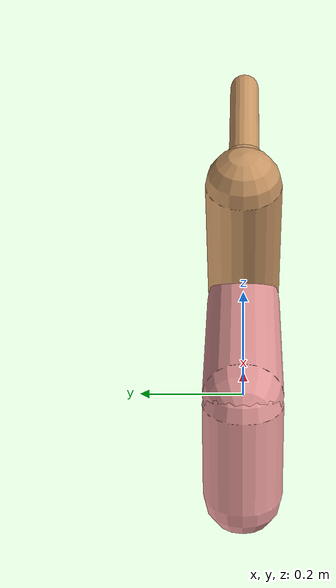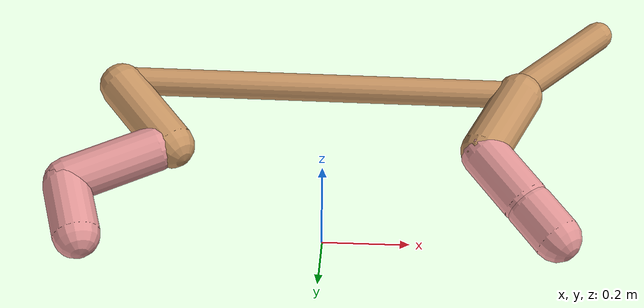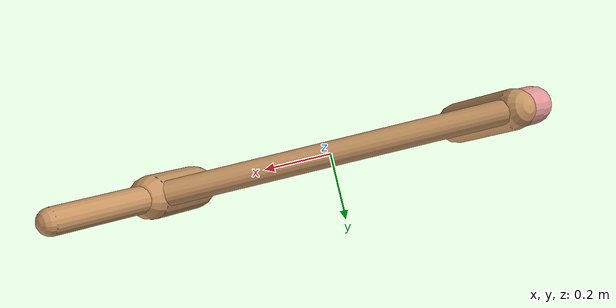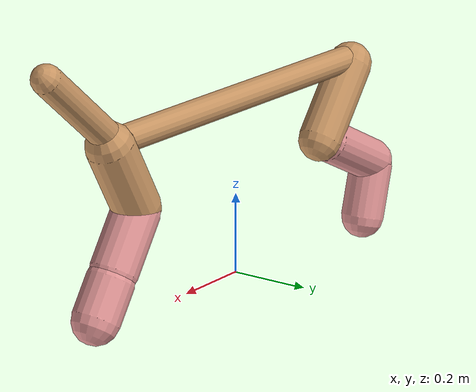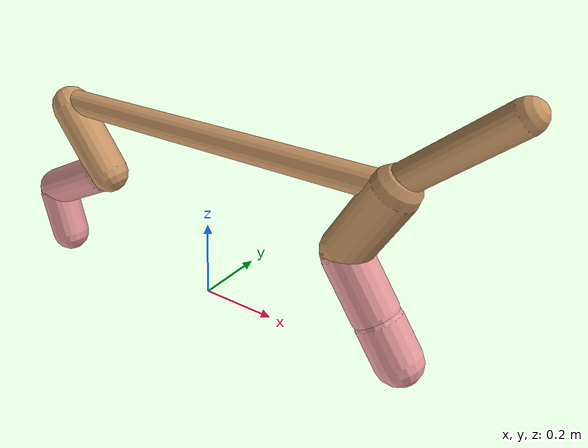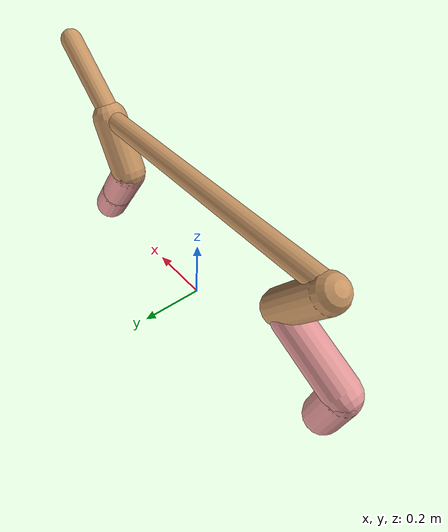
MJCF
<mujoco model="cheetah">
  <compiler angle="radian" coordinate="local" inertiafromgeom="true" settotalmass="14" />
  <default>
    <joint armature=".1" damping=".01" limited="true" solimplimit="0 .8 .03" solreflimit=".02 1" stiffness="8" />
    <geom conaffinity="0" condim="3" contype="1" friction="0.8 .1 .1" rgba="0.8 0.6 .4 1" solimp="0.0 0.8 0.01" solref="0.02 1" />
    <motor ctrllimited="true" ctrlrange="-1 1" />
  </default>
  <size nstack="300000" nuser_geom="1" />
  <option gravity="0 0 -9.81" timestep="0.01" />
  <worldbody>
    <body name="torso" pos="0.0 0.0 0.43581250103959296">
      <joint armature="0" axis="1 0 0" damping="0" limited="false" name="ignorex" pos="0 0 0" stiffness="0" type="slide" />
      <joint armature="0" axis="0 0 1" damping="0" limited="false" name="ignorez" pos="0 0 0" stiffness="0" type="slide" />
      <joint armature="0" axis="0 1 0" damping="0" limited="false" name="ignorey" pos="0 0 0" stiffness="0" type="hinge" />
      <geom fromto="-0.5 0.0 0.0 0.48827618061242084 0.0 0.0" name="torso" size="0.033453243274203515" type="capsule" />
      <geom axisangle="0 1 0 .87" name="head" pos="0.5882761806124208 0.0 0.1" size="0.036254779820942794 0.15" type="capsule" />

      <body name="bthigh" pos="-.5 0 0">
        <joint axis="0 1 0" damping="6" name="bthigh" pos="0 0 0" range="-.52 1.05" stiffness="240" type="hinge" />
        <geom axisangle="0 1 0 -3.8" name="bthigh" pos="0.07704330888726686 0.0 -0.10015630155344692" size="0.05461528662856498 0.10734822708272243" type="capsule" />
        <body name="bshin" pos="0.11408661777453372 0.0 -0.19031260310689382">
          <joint axis="0 1 0" damping="4.5" name="bshin" pos="0 0 0" range="-.785 .785" stiffness="180" type="hinge" />
          <geom axisangle="0 1 0 -2.03" name="bshin" pos="-0.10516196260010283 0.0 -0.05258098130005141" rgba="0.9 0.6 0.6 1" size="0.05461528662856498 0.11104989008557493" type="capsule" />
          <body name="bfoot" pos="-0.21032392520020565 0.0 -0.10516196260010283">
            <joint axis="0 1 0" damping="3" name="bfoot" pos="0 0 0" range="-.4 .785" stiffness="120" type="hinge" />
            <geom axisangle="0 1 0 -.27" name="bfoot" pos="0.022787957671235134 0.0 -0.0736810631369936" rgba="0.9 0.6 0.6 1" size="0.05461528662856498 0.06959126445362696" type="capsule" />
            <inertial mass="10" />
          </body>
        </body>
      </body>
      <body name="fthigh" pos="0.48827618061242084 0.0 0.0">
        <joint axis="0 1 0" damping="4.5" name="fthigh" pos="0 0 0" range="-1.5 0.8" stiffness="180" type="hinge" />
        <geom axisangle="0 1 0 .52" name="fthigh" pos="-0.051480664579254654 0.0 -0.08825256785015081" size="0.05807246129994176 0.09624588142078021" type="capsule" />
        <body name="fshin" pos="-0.10296132915850931 0.0 -0.17650513570030163">
          <joint axis="0 1 0" damping="3" name="fshin" pos="0 0 0" range="-1.2 1.1" stiffness="120" type="hinge" />
          <geom axisangle="0 1 0 -.6" name="fshin" pos="0.047849367971737486 0.0 -0.06625297103779036" rgba="0.9 0.6 0.6 1" size="0.05807246129994176 0.07670724383911805" type="capsule" />
          <body name="ffoot" pos="0.09569873594347497 0.0 -0.13250594207558072">
            <joint axis="0 1 0" damping="1.5" name="ffoot" pos="0 0 0" range="-3.1 -0.3" stiffness="60" type="hinge" />
            <geom axisangle="0 1 0 -.6" name="ffoot" pos="0.03453943756118441 0.0 -0.053728013984064654" rgba="0.9 0.6 0.6 1" size="0.05807246129994176 0.05065572706356853" type="capsule" />
            <inertial mass="10" />
          </body>
        </body>
      </body>
    </body>
  </worldbody>
  <actuator>
    <motor gear="120" joint="bthigh" name="bthigh" />
    <motor gear="90" joint="bshin" name="bshin" />
    <motor gear="60" joint="bfoot" name="bfoot" />
    <motor gear="120" joint="fthigh" name="fthigh" />
    <motor gear="60" joint="fshin" name="fshin" />
    <motor gear="30" joint="ffoot" name="ffoot" />
  </actuator>
</mujoco>
